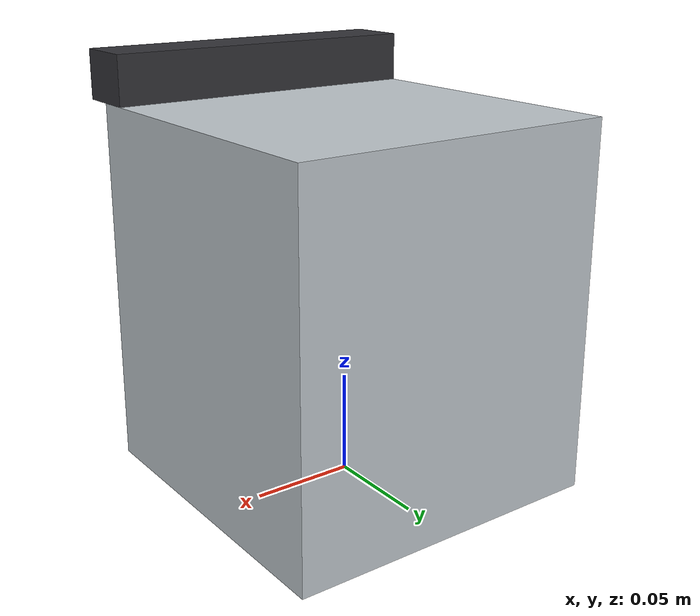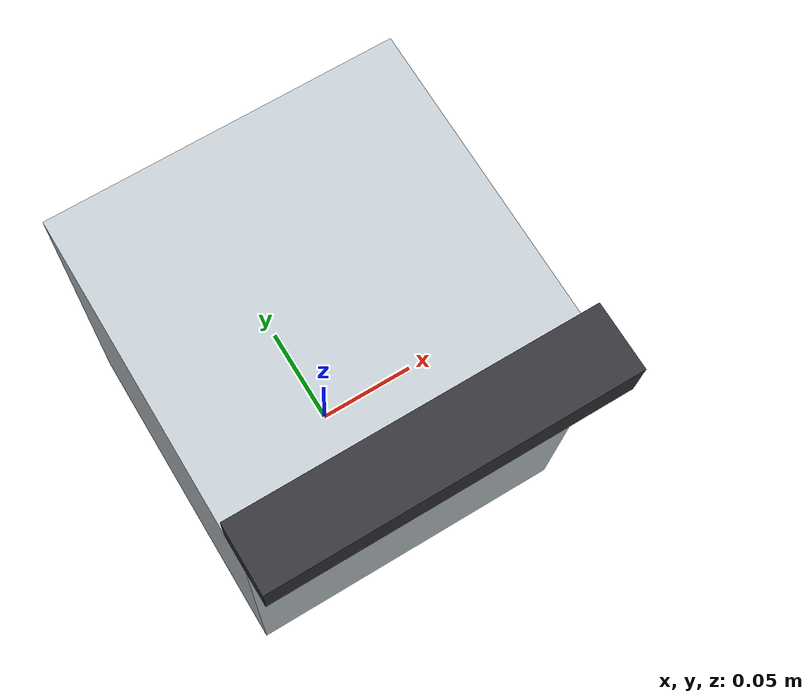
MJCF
<?xml version="1.0" encoding="utf-8"?>
<mujoco model="real_lab_iitm_bioincubator_fermenter">
  <compiler angle="radian" autolimits="true"/>
  <default>
    <default class="body"><geom contype="1" conaffinity="1"/></default>
  </default>
  <worldbody>
    <body name="base">
      <geom type="box" size="0.08 0.08 0.09" pos="0 0 0.09" rgba="0.75 0.78 0.8 1" class="body"/>
      <body name="lid" pos="0 -0.08 0.18">
        <joint name="lid_joint" type="hinge" axis="0 1 0" range="0 1.5" damping="0.6" frictionloss="0.25"/>
  <geom type="box" size="0.08 0.015 0.012" pos="0 0 0.012" rgba="0.2 0.2 0.22 1" class="body"/>
      </body>
    </body>
  </worldbody>
</mujoco>
